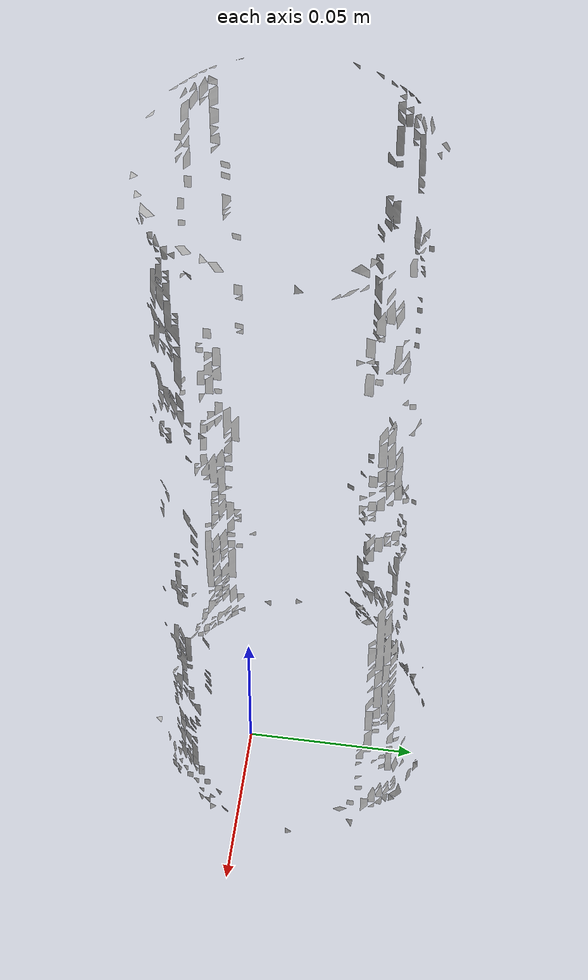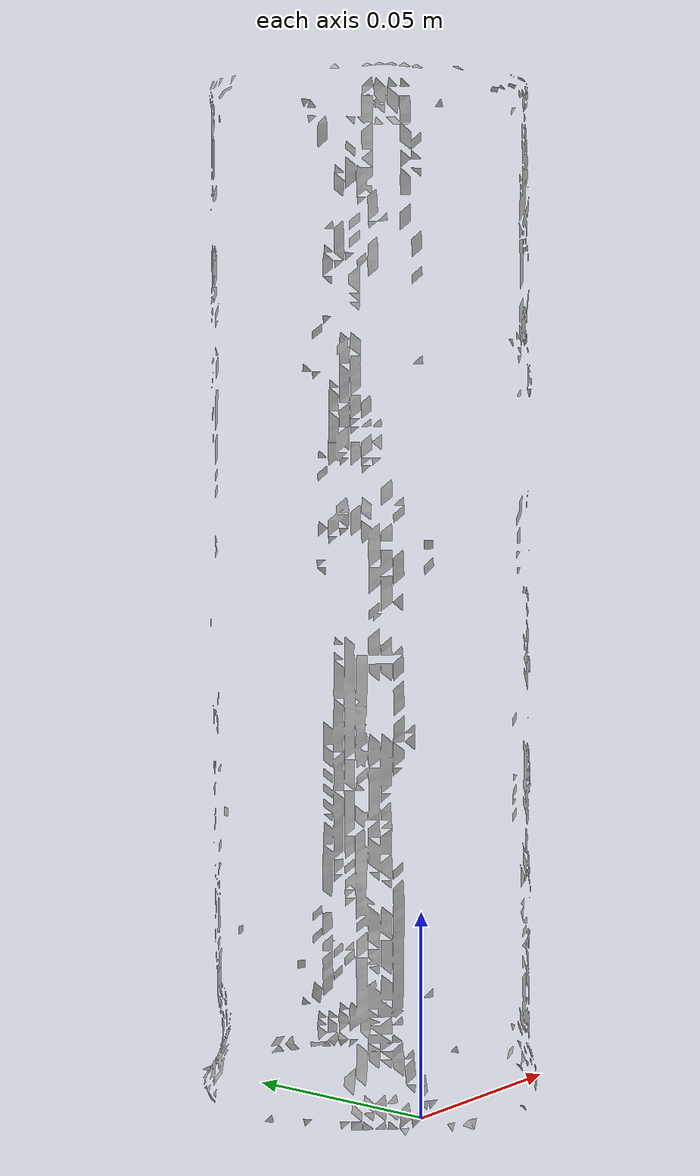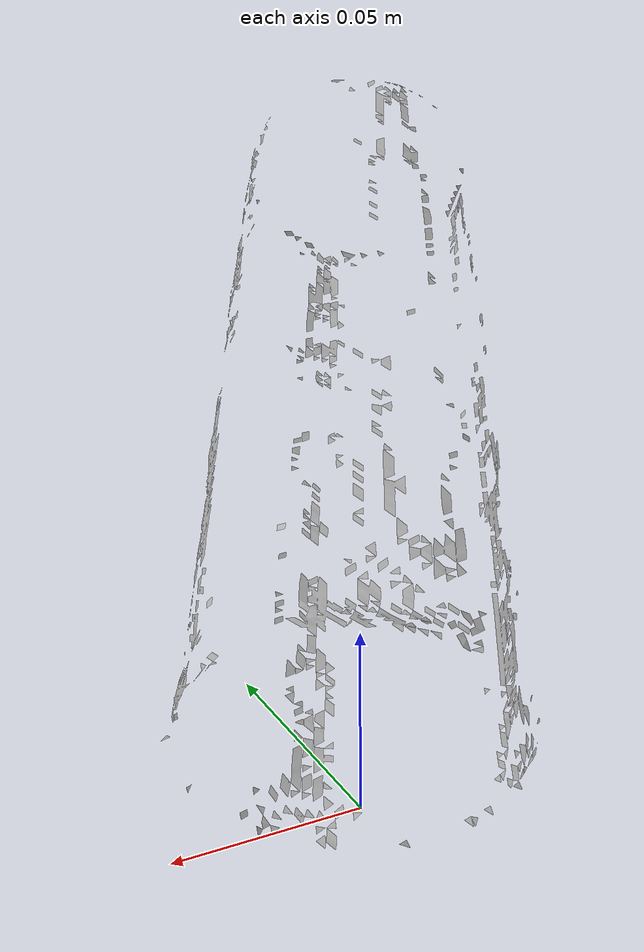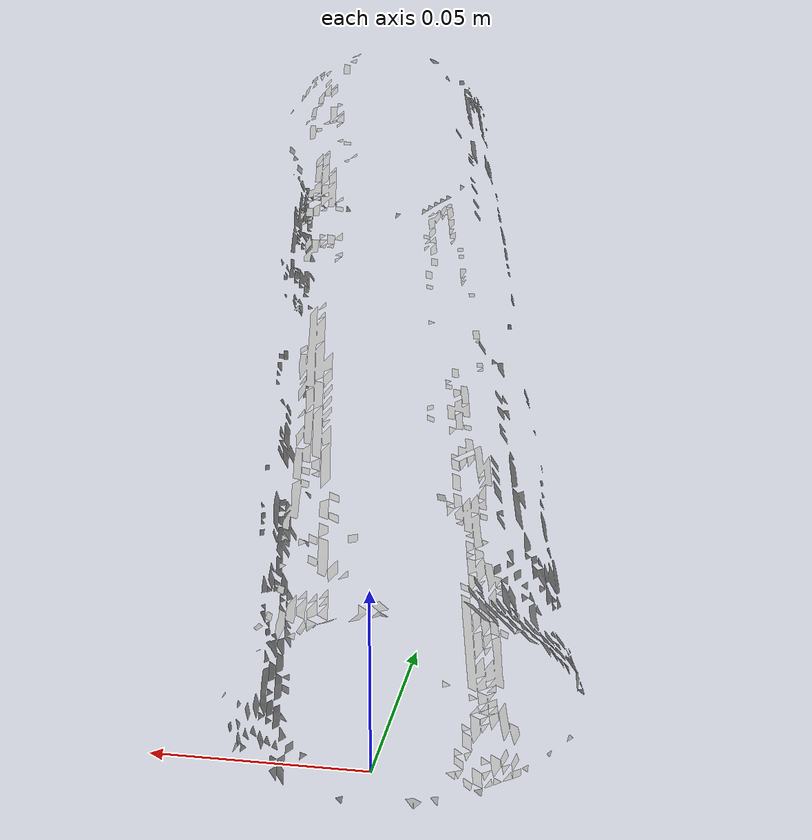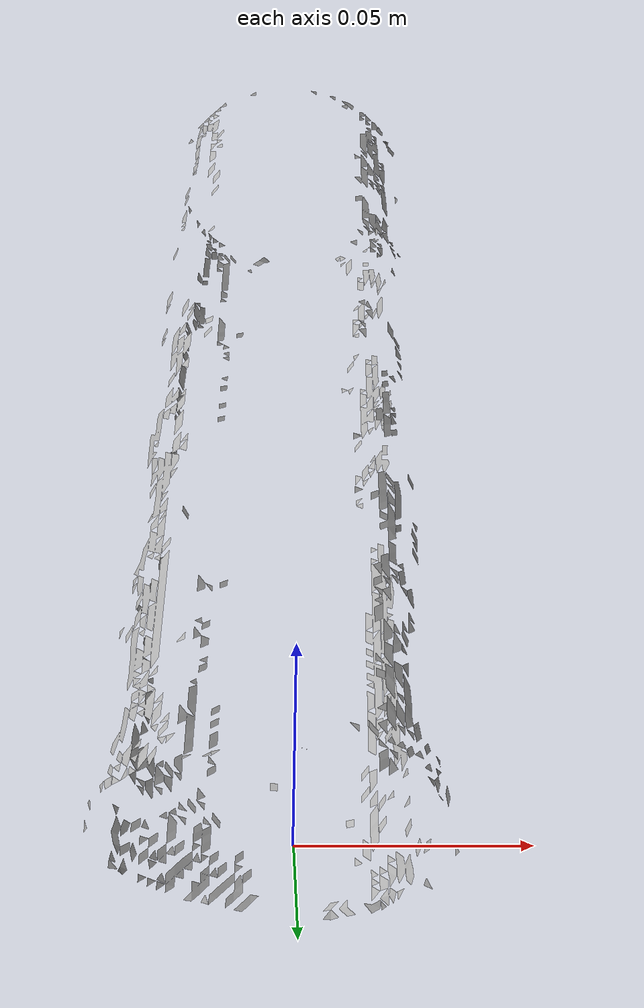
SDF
<?xml version='1.0'?>
<sdf version="1.4">
  <model name="chips_can">
    <static>false</static>
    <link name="link">

      <inertial>
        <pose>-0.004935076789852863 0.012018813662661377 0.12330550435835076 3.136678492936583 -5.210237712020393e-05 1.9138462724170036</pose>
        <mass>0.0010817455855552354</mass>
        <inertia>
          <ixx>5.5349800449902895e-06</ixx>
          <ixy>-8.367874966960201e-22</ixy>
          <ixz>5.680285390396841e-22</ixz>
          <iyy>5.508049223930805e-06</iyy>
          <iyz>-3.2925833273729343e-22</iyz>
          <izz>7.848117618939263e-07</izz>
        </inertia>
      </inertial>

      <collision name="collision">
        <geometry>
          <mesh>
            <!-- Use a downsampled mesh for collisions -->
            <uri>model://001_chips_can/tsdf/textured.obj</uri>
          </mesh>
        </geometry>
        <surface>
          <contact>
            <ode>
              <kp>1000000000000.0</kp>
              <kd>1</kd>
              <min_depth>0.0001</min_depth>
              <max_vel>0.01</max_vel>
            </ode>
          </contact>
          <friction>
            <ode>
              <mu>0.5</mu>
              <mu2>0.5</mu2>
            </ode>
          </friction>
        </surface>
      </collision>

      <visual name="visual">
        <geometry>
          <mesh>
            <uri>model://001_chips_can/tsdf/textured.obj</uri>
          </mesh>
        </geometry>
      </visual>

    </link>
  </model>
</sdf>
